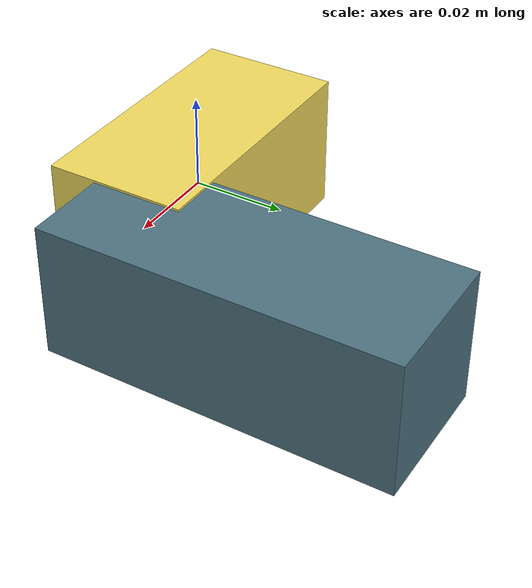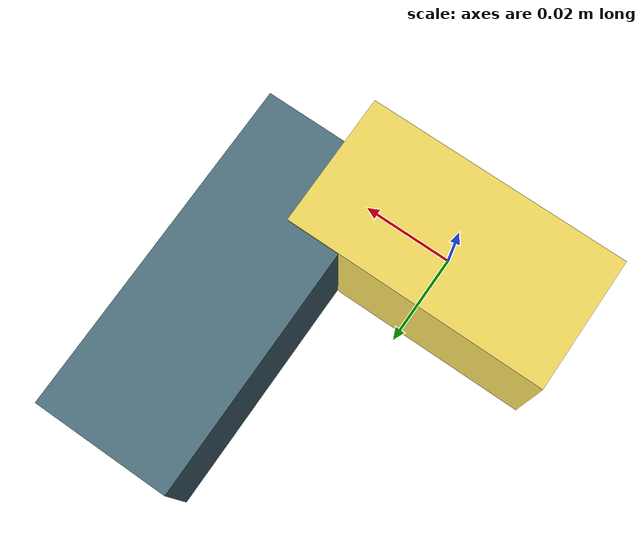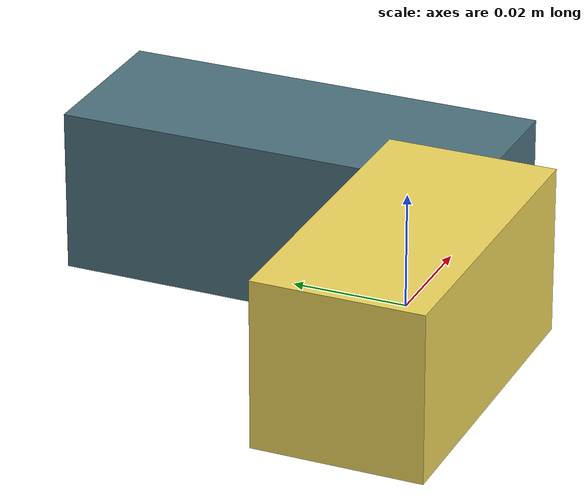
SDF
<sdf version="1.4"><world name="default"><model name="object0"><link name="link1"><pose>0 0 0 0 0 0</pose><inertial><pose>0 0 0 0 0 0</pose><mass>0.031386468080294695</mass><inertia><ixx>4.707970212044204e-06</ixx><ixy>0</ixy><iyy>1.1190043477105428e-05</iyy><ixz>0</ixz><iyz>0</iyz><izz>1.1190043477105428e-05</izz></inertia></inertial><visual name="link1_visual"><pose>0 0  0 0 0 0</pose><geometry><box><size>0.05812308903758278 0.03 0.03</size></box></geometry><material><diffuse>0.9468363001910249 0.8542634514374658 0.36753286391203366 1</diffuse></material></visual><collision><pose>0 0  0 0 0 0</pose><geometry><box><size>0.05812308903758278 0.03 0.03</size></box></geometry></collision></link><link name="link2"><pose>0.032126936049689234 0.0329783542401568 0 0 0 0</pose><inertial><pose>0 0 0 0 0 0</pose><mass>0.04059325398806687</mass><inertia><ixx>2.1960726157886232e-05</ixx><ixy>0</ixy><iyy>5.8894045994353675e-06</iyy><ixz>0</ixz><iyz>0</iyz><izz>2.2160309656660896e-05</izz></inertia></inertial><visual name="link2_visual"><pose>0 0  0 0 0 0</pose><geometry><box><size>0.03 0.07517269257049419 0.028999999999999998</size></box></geometry><material><diffuse>0.30704213321699403 0.45312313524549747 0.5038038938043367 1</diffuse></material></visual><collision><pose>0 0  0 0 0 0</pose><geometry><box><size>0.03 0.07517269257049419 0.028999999999999998</size></box></geometry></collision></link><joint name="link_joint_0" type="fixed"><parent>link1</parent><child>link2</child><pose>0 0 0 0 0 0</pose><axis><xyz>0 0 1</xyz></axis></joint></model></world></sdf>
